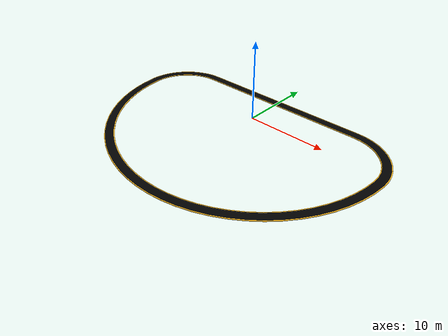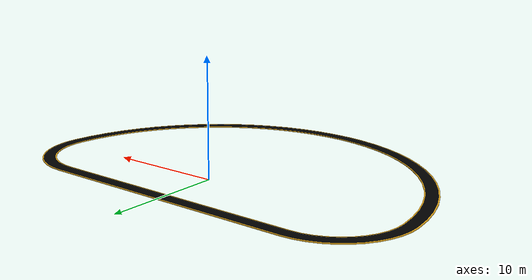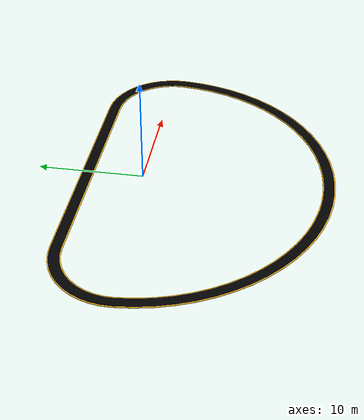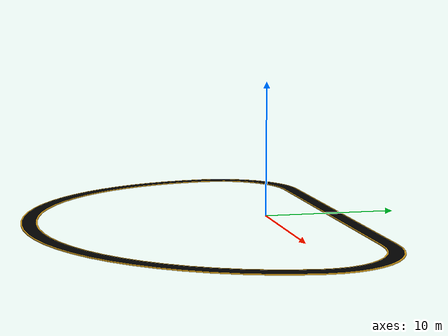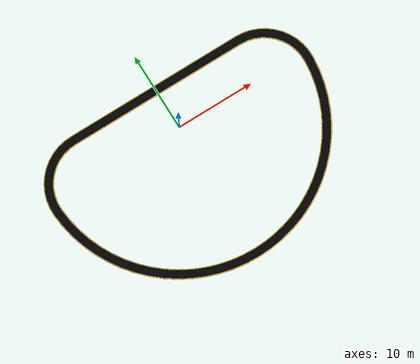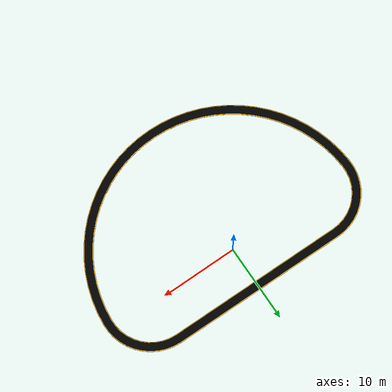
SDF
<sdf version="1.8">
  <model name='SimpleTrack'>
    <pose>0 0 0 0 0 0</pose>
    <self_collide>false</self_collide>
    <static>true</static>
    <link name='SimpleTrack/Base'>
      <visual name='SimpleTrack/TrackVisual'>
        <pose>0 0 -.045 0 0 0</pose>
        <geometry>
          <mesh>
            <scale>0.5 0.5 1.0</scale>
            <uri>model://SimpleTrack/meshes/SimpleTrackLarge.dae</uri>
          </mesh>
        </geometry>
      </visual>
    </link>
  </model>
</sdf>
